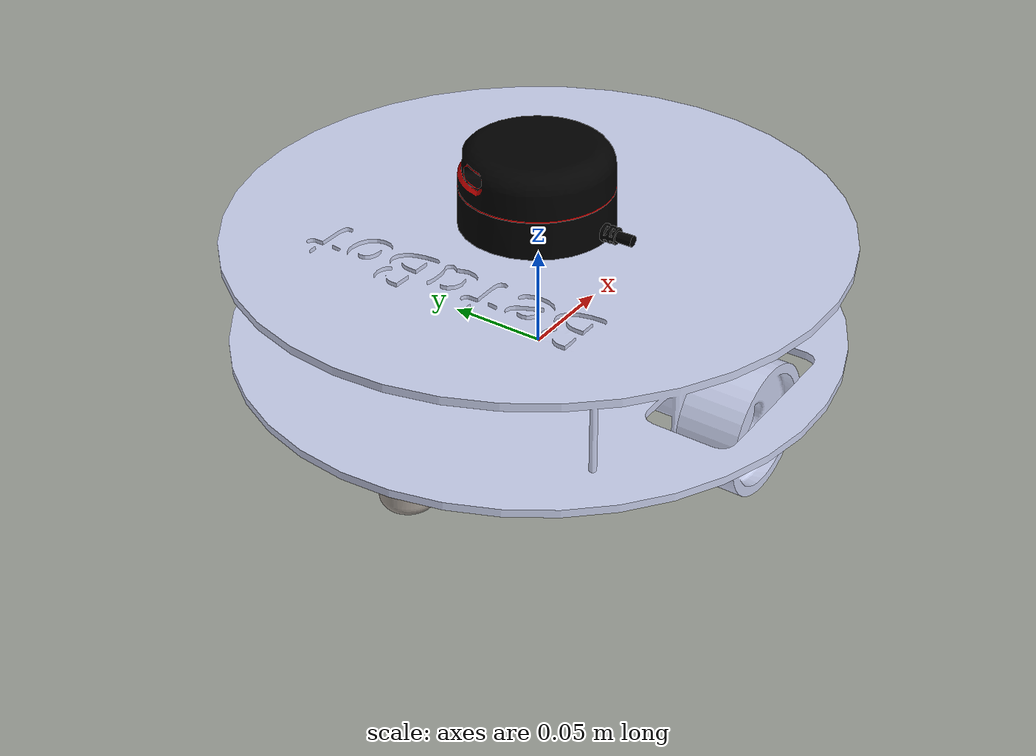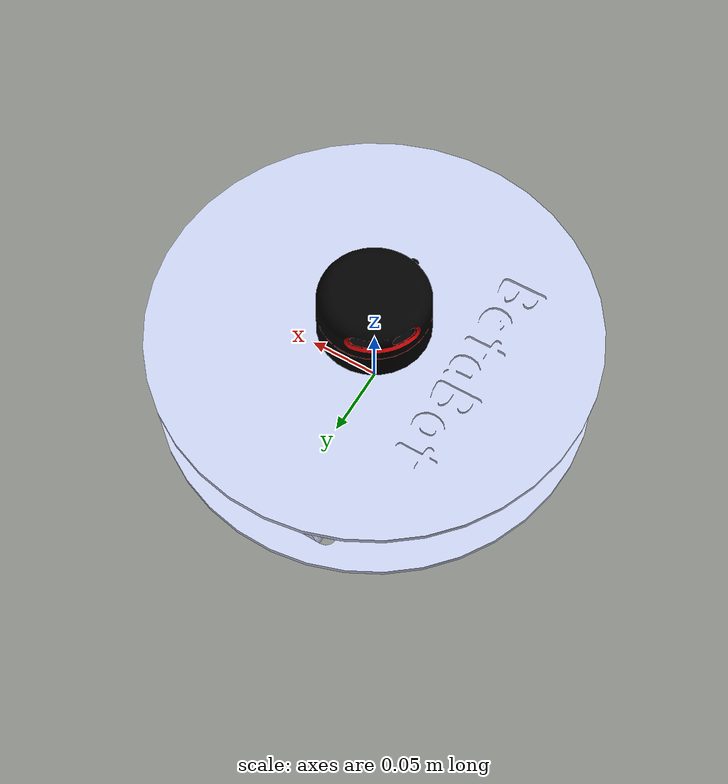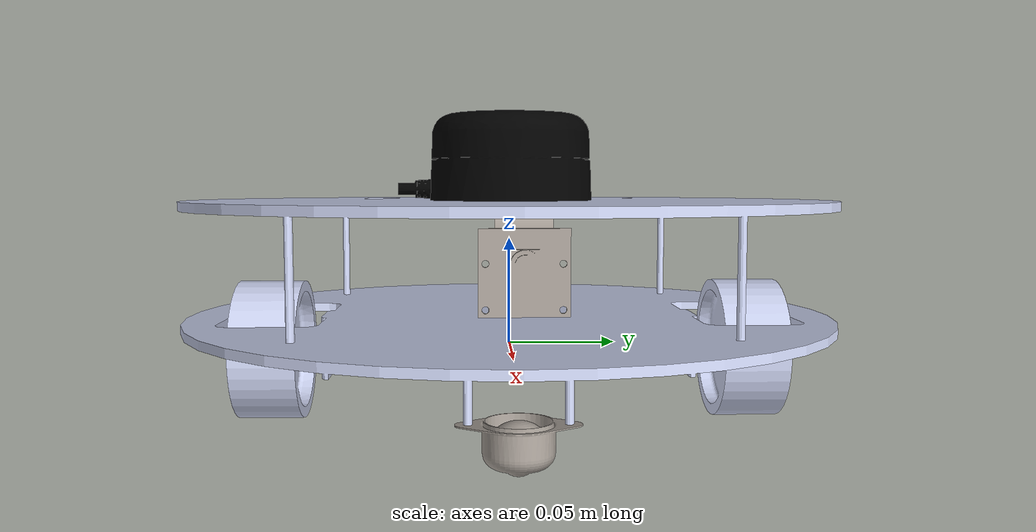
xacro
<?xml version='1.0'?>

<robot name="betabot" xmlns:xacro="http://www.ros.org/wiki/xacro">

<!-- CALL HEADER FILES FOR MACROS AND GAZEBO PLUGINS -->
  <xacro:include filename="$(find betabot_description)/urdf/betabot.gazebo.xacro" />
  <xacro:include filename="$(find betabot_description)/urdf/materials.xacro" />
  <xacro:include filename="$(find betabot_description)/urdf/macros.xacro" />

<!-- ***** BETABOT BASE PART***** -->
  <link name="base_footprint"/>

  <joint name="base_joint" type="fixed">
    <parent link="base_footprint"/>
    <child link="base_link"/>
    <origin xyz="0.0 0.0 0.010" rpy="0 0 0"/>
  </joint>

  <link name="base_link">
    <inertial>
      <origin xyz="2.8456E-05 0.02785 0.00053742" rpy="0 0 0" />
      <mass value="5.67773" />
      <inertia ixx="0.019995" ixy="0.0" ixz="0.0" iyy="0.019995" iyz="0.0" izz="0.03675" />
    </inertial>
    <visual>
      <origin xyz="0 0 0" rpy="0 0 0" />
      <geometry>
        <mesh filename="package://betabot_description/meshes/betabot_base.dae" />
      </geometry>
      <material name="">
        <color rgba="0.79608 0.82353 0.93725 1" />
      </material>
    </visual>
    <!-- COMMENT THE ORGINAL COLLISION MODEL,NEEDS MORE PROCESSING POWER -->

    <!-- SIMPLIFIED COLLISOION MESH FOR FOR SMOOTH PROCESSING -->
    <collision>
      <geometry>
        <cylinder length="0.004" radius="0.15"/>
      </geometry>
      <origin rpy="0 0 0" xyz="0  0 0.05"/>
    </collision>
  </link>

<!-- ***** BETABOT RIGHT WHEEL PART ***** -->
  <link name="right_wheel_link">
    <inertial>
      <origin xyz="1.7347E-17 -7.3726E-17 -0.015" rpy="0 0 0" />
      <mass value="0.5" />
      <inertia ixx="0.001" ixy="0.0" ixz="0.0" iyy="0.001" iyz="0.0" izz="0.001" />
    </inertial>
    <visual>
      <origin xyz="0 0 0" rpy="0 0 0" />
      <geometry>
        <mesh filename="package://betabot_description/meshes/betabot_wheel.dae" />
      </geometry>
      <material name="">
        <color rgba="0.79216 0.81961 0.93333 1" />
      </material>
    </visual>
    <collision>
      <geometry>
        <cylinder length="0.03" radius="0.0325"/>
      </geometry>
      <origin rpy="0 0 0" xyz="0 0 0.016"/>
    </collision>
  </link>

  <!-- JOINT -->
  <joint name="right_wheel_joint" type="continuous">
    <origin xyz="0 -0.097 -0.0125" rpy="-1.5708 1.3735 3.14159265359" />
    <parent link="base_link" />
    <child link="right_wheel_link" />
    <axis xyz="0 0 -1" />
  </joint>

<!-- ***** BETABOT LEFT WHEEL PART ***** -->
  <!-- LINK -->
  <link name="left_wheel_link">
    <inertial>
      <origin xyz="-1.7347E-17 -7.3726E-17 -0.015" rpy="0 0 0" />
      <mass value="0.5" />
      <inertia ixx="0.001" ixy="0.0" ixz="0.0" iyy="0.001" iyz="0.0" izz="0.001" />
    </inertial>
    <visual>
      <origin xyz="0 0 0" rpy="0 0 0" />
      <geometry>
        <mesh filename="package://betabot_description/meshes/betabot_wheel.dae" />
      </geometry>
      <material name="">
        <color rgba="0.79216 0.81961 0.93333 1" />
      </material>
    </visual>
    <collision>
      <geometry>
        <cylinder length="0.03" radius="0.0325"/>
      </geometry>
      <origin rpy="0 0 0" xyz="0 0 0.016"/>
    </collision>
  </link>

  <!-- JOINT -->
  <joint name="left_wheel_joint" type="continuous">
    <origin xyz="0 0.097 -0.0125" rpy="-1.5708 1.5228 0" />
    <parent link="base_link" />
    <child link="left_wheel_link" />
    <axis xyz="0 0 1" />
  </joint>

<!-- ***** BETABOT FRONT CASTER WHEEL ***** -->
   <!-- LINK -->
  <link name="front_caster_link">
    <inertial>
      <origin xyz="0 -0.011704 0.02" rpy="0 0 0" />
      <mass value="0.2" />
      <inertia ixx="0.001" ixy="0.0" ixz="0.0" iyy="0.001" iyz="0.0"  izz="0.001" />
    </inertial>
    <visual>
      <origin xyz="0 0 0" rpy="0 0 0" />
      <geometry>
        <mesh filename="package://betabot_description/meshes/betabot_caster.dae" />
      </geometry>
      <material name="">
        <color rgba="0.65098 0.61961 0.58824 1" />
      </material>
    </visual>
    <collision>
      <geometry>
         <sphere radius="0.020"/>
      </geometry>
      <origin rpy="0 0 0" xyz="0 -0.0026 0"/>
    </collision>
  </link>

  <!-- JOINT -->
  <joint name="front_caster_joint" type="fixed">
    <origin xyz="0.105 0 -0.02231" rpy="1.5708 6.123E-17 1.5708" />
    <parent link="base_link" />
    <child link="front_caster_link" />
    <axis xyz="0 0 0" />
  </joint>

<!-- ***** BETABOT BACK CASTER WHEEL ***** -->
  <!-- LINK -->
  <link name="back_caster_link">
    <inertial>
      <origin xyz="0 0.011704 0.02" rpy="0 0 0" />
      <mass value="0.2" />
      <inertia ixx="0.001" ixy="0.0" ixz="0.0" iyy="0.001" iyz="0.0" izz="0.001" />
    </inertial>
    <visual>
      <origin xyz="0 0 0" rpy="0 0 0" />
      <geometry>
        <mesh filename="package://betabot_description/meshes/betabot_caster.dae" />
      </geometry>
      <material
        name="">
        <color rgba="0.65098 0.61961 0.58824 1" />
      </material>
    </visual>
    <collision>
      <geometry>
         <sphere radius="0.020"/>
      </geometry>
      <origin rpy="0 0 0" xyz="0 -0.0026 0"/>
    </collision>
  </link>
  <!-- JOINT -->
  <joint name="back_caster_joint" type="fixed">
    <origin xyz="-0.105 0 -0.02231" rpy="1.5708 6.123E-17 1.5708" />
    <parent link="base_link" />
    <child link="back_caster_link" />
    <axis xyz="0 0 0" />
  </joint>

<!-- ***** RASPBERRY PI 8MB CAMERA SIMULATED PART ***** -->
  <!-- LINK -->
  <link name="camera_link">
    <visual>
      <origin xyz="0 0 0" rpy="0 1.570 1.570" />
      <geometry>
        <mesh filename="package://betabot_description/meshes/raspicam.dae" />
      </geometry>
        <material name="">
        <color rgba="0.65098 0.61961 0.58824 1" />
      </material>
    </visual>
    <inertial>
      <mass value="0.01" />
      <origin xyz="0 0 0" rpy="0 0 0"/>
      <box_inertia m="0.01" x="0.05" y="0.05" z="0.05" />
      <inertia ixx="1e-6" ixy="0" ixz="0" iyy="1e-6" iyz="0" izz="1e-6" />
    </inertial>
  </link>
  <!-- JOINT -->
  <joint name="camera_joint" type="fixed">
    <axis xyz="0 0 0" />
    <origin xyz="0.148 0 0.036" rpy="0 0 0"/>
    <parent link="base_link"/>
    <child link="camera_link"/>
  </joint>

<!-- ***** IMU SENSOR PART ***** -->
  <!-- LINK -->
  <link name="imu_sensor_link">
      <collision>
          <origin xyz="0 0 0" rpy="0 0 0"/>
          <geometry>
              <box size="0.02 0.02 0.02"/>
          </geometry>
      </collision>
      <visual>
          <origin xyz="0 0 0" rpy="0 0 0"/>
          <geometry>
              <box size="0.02 0.02 0.02"/>
          </geometry>
      </visual>
      <inertial>
          <mass value="0.001" />
          <origin xyz="0 0 0" rpy="0 0 0"/>
          <inertia ixx="0.00000015" ixy="0" ixz="0" iyy="0.00000015" iyz="0" izz="0.00000015" />
      </inertial>
  </link>
  <!-- JOINT -->
  <joint name="imu_sensor_joint" type="fixed">
      <axis xyz="0 0 1" />
      <origin xyz="0 0 0" rpy="0 0 0"/>
      <parent link="base_link"/>
      <child link="imu_sensor_link"/>
  </joint>

<!-- ***** RPLiDAR A1 RANGE FINDER SENSOR SIMULATED PART ***** -->
  <!-- LINK -->
  <!-- JOINT -->

<!-- ***** RPLiDAR A2 RANGE FINDER SENSOR SIMULATED PART ***** -->
  <!-- LINK -->
  <link name="rplidar_link">
    <collision>
      <origin xyz="0 0 -0.03" rpy="0 0 0"/>
      <geometry>
         <sphere radius="0.045"/>
      </geometry>
    </collision>
    <visual>
      <origin xyz="0 0 -0.032" rpy="0 0 0"/>
      <geometry>
        <mesh filename="package://betabot_description/meshes/rplidar_a2.dae"/>
      </geometry>
    </visual>
    <inertial>
      <mass value="1e-5" />
      <origin xyz="0 0 0" rpy="0 0 0"/>
      <inertia ixx="1e-6" ixy="0" ixz="0" iyy="1e-6" iyz="0" izz="1e-6" />
    </inertial>
  </link>
  <!-- JOINT -->
  <joint name="rplidar_joint" type="fixed">
    <axis xyz="0 1 0" />
    <origin xyz="0 0 .109" rpy="0 0 1.57"/>
    <parent link="base_link"/>
    <child link="rplidar_link"/>
  </joint>

</robot>
